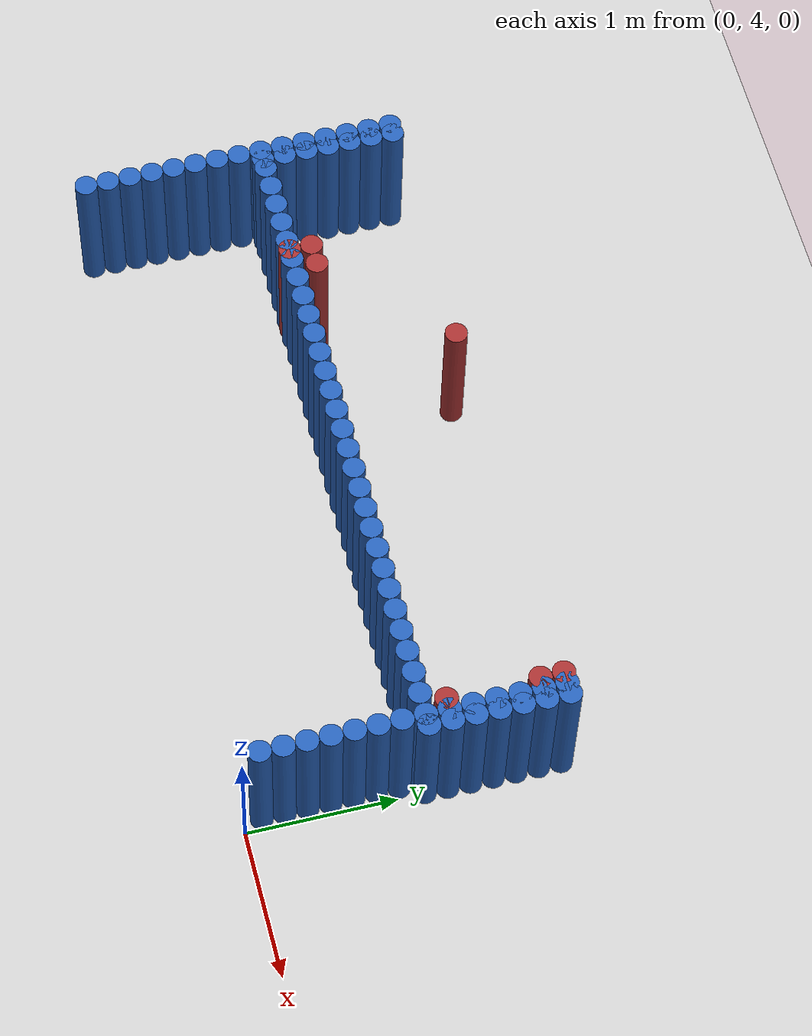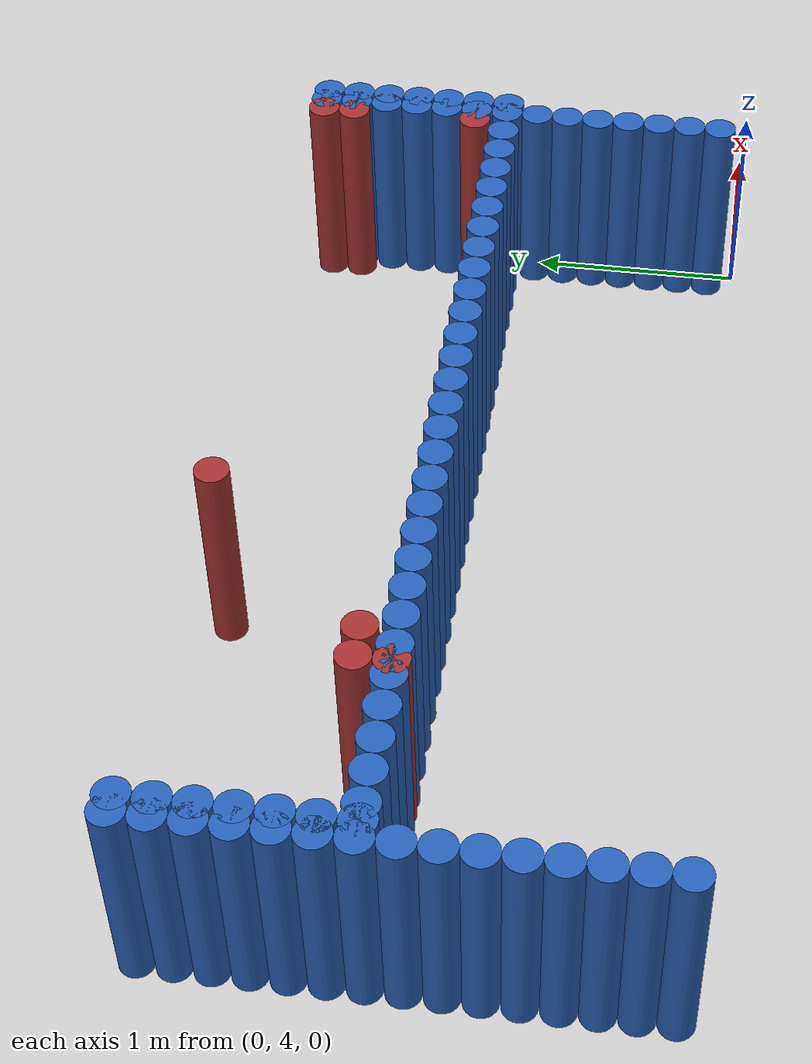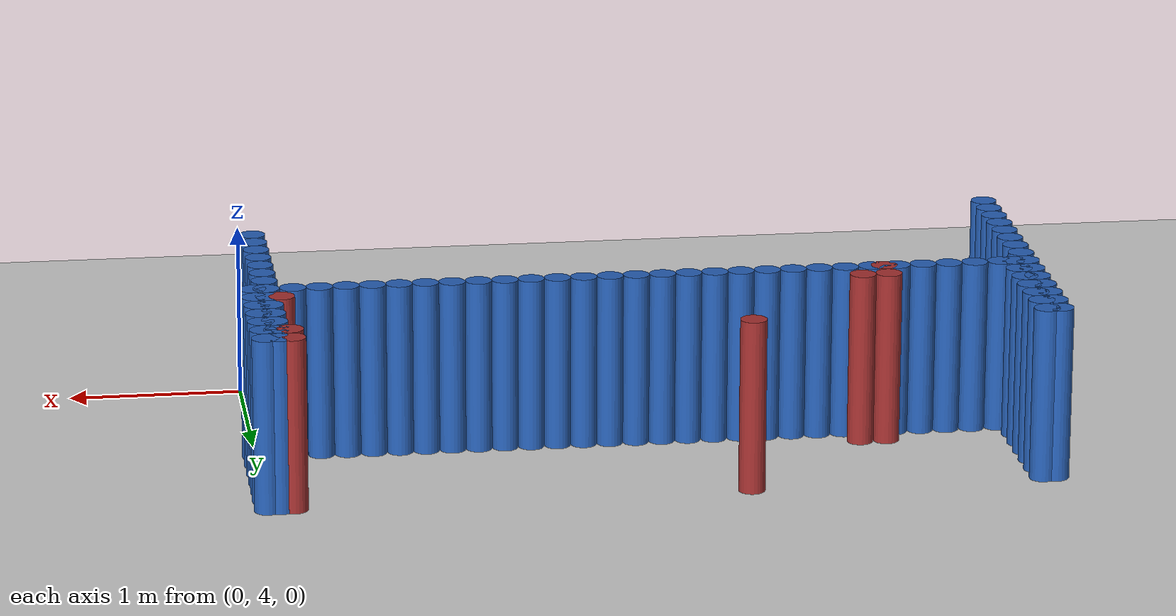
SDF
<sdf version="1.6">
 <world name="barn_world">
  <model name="ground_plane">
   <static>1</static>
   <link name="link">
    <collision name="collision">
     <geometry><plane><normal>0 0 1</normal><size>100 100</size></plane></geometry>
    </collision>
    <visual name="visual">
     <geometry><plane><normal>0 0 1</normal><size>100 100</size></plane></geometry>
     <material>
      <script><uri>file://media/materials/scripts/gazebo.material</uri><name>Gazebo/Grey</name></script>
     </material>
    </visual>
   </link>
  </model>
  <model name="unit_cylinder_81">
   <static>1</static>
   <pose>-4.4250 3.9750 0.5 0 0 0</pose>
   <link name="link">
    <collision name="collision">
     <geometry><cylinder><radius>0.075</radius><length>1</length></cylinder></geometry>
    </collision>
    <visual name="visual">
     <geometry><cylinder><radius>0.075</radius><length>1</length></cylinder></geometry>
     <material><ambient>0.152 0.379 0.72 1</ambient><diffuse>0.152 0.379 0.72 1</diffuse></material>
    </visual>
   </link>
  </model>
  <model name="unit_cylinder_82">
   <static>1</static>
   <pose>-0.0750 4.1250 0.5 0 0 0</pose>
   <link name="link">
    <collision name="collision">
     <geometry><cylinder><radius>0.075</radius><length>1</length></cylinder></geometry>
    </collision>
    <visual name="visual">
     <geometry><cylinder><radius>0.075</radius><length>1</length></cylinder></geometry>
     <material><ambient>0.152 0.379 0.72 1</ambient><diffuse>0.152 0.379 0.72 1</diffuse></material>
    </visual>
   </link>
  </model>
  <model name="unit_cylinder_83">
   <static>1</static>
   <pose>-4.4250 4.1250 0.5 0 0 0</pose>
   <link name="link">
    <collision name="collision">
     <geometry><cylinder><radius>0.075</radius><length>1</length></cylinder></geometry>
    </collision>
    <visual name="visual">
     <geometry><cylinder><radius>0.075</radius><length>1</length></cylinder></geometry>
     <material><ambient>0.152 0.379 0.72 1</ambient><diffuse>0.152 0.379 0.72 1</diffuse></material>
    </visual>
   </link>
  </model>
  <model name="unit_cylinder_84">
   <static>1</static>
   <pose>-0.0750 4.2750 0.5 0 0 0</pose>
   <link name="link">
    <collision name="collision">
     <geometry><cylinder><radius>0.075</radius><length>1</length></cylinder></geometry>
    </collision>
    <visual name="visual">
     <geometry><cylinder><radius>0.075</radius><length>1</length></cylinder></geometry>
     <material><ambient>0.152 0.379 0.72 1</ambient><diffuse>0.152 0.379 0.72 1</diffuse></material>
    </visual>
   </link>
  </model>
  <model name="unit_cylinder_85">
   <static>1</static>
   <pose>-4.4250 4.2750 0.5 0 0 0</pose>
   <link name="link">
    <collision name="collision">
     <geometry><cylinder><radius>0.075</radius><length>1</length></cylinder></geometry>
    </collision>
    <visual name="visual">
     <geometry><cylinder><radius>0.075</radius><length>1</length></cylinder></geometry>
     <material><ambient>0.152 0.379 0.72 1</ambient><diffuse>0.152 0.379 0.72 1</diffuse></material>
    </visual>
   </link>
  </model>
  <model name="unit_cylinder_86">
   <static>1</static>
   <pose>-0.0750 4.4250 0.5 0 0 0</pose>
   <link name="link">
    <collision name="collision">
     <geometry><cylinder><radius>0.075</radius><length>1</length></cylinder></geometry>
    </collision>
    <visual name="visual">
     <geometry><cylinder><radius>0.075</radius><length>1</length></cylinder></geometry>
     <material><ambient>0.152 0.379 0.72 1</ambient><diffuse>0.152 0.379 0.72 1</diffuse></material>
    </visual>
   </link>
  </model>
  <model name="unit_cylinder_87">
   <static>1</static>
   <pose>-4.4250 4.4250 0.5 0 0 0</pose>
   <link name="link">
    <collision name="collision">
     <geometry><cylinder><radius>0.075</radius><length>1</length></cylinder></geometry>
    </collision>
    <visual name="visual">
     <geometry><cylinder><radius>0.075</radius><length>1</length></cylinder></geometry>
     <material><ambient>0.152 0.379 0.72 1</ambient><diffuse>0.152 0.379 0.72 1</diffuse></material>
    </visual>
   </link>
  </model>
  <model name="unit_cylinder_88">
   <static>1</static>
   <pose>-0.0750 4.5750 0.5 0 0 0</pose>
   <link name="link">
    <collision name="collision">
     <geometry><cylinder><radius>0.075</radius><length>1</length></cylinder></geometry>
    </collision>
    <visual name="visual">
     <geometry><cylinder><radius>0.075</radius><length>1</length></cylinder></geometry>
     <material><ambient>0.152 0.379 0.72 1</ambient><diffuse>0.152 0.379 0.72 1</diffuse></material>
    </visual>
   </link>
  </model>
  <model name="unit_cylinder_89">
   <static>1</static>
   <pose>-4.4250 4.5750 0.5 0 0 0</pose>
   <link name="link">
    <collision name="collision">
     <geometry><cylinder><radius>0.075</radius><length>1</length></cylinder></geometry>
    </collision>
    <visual name="visual">
     <geometry><cylinder><radius>0.075</radius><length>1</length></cylinder></geometry>
     <material><ambient>0.152 0.379 0.72 1</ambient><diffuse>0.152 0.379 0.72 1</diffuse></material>
    </visual>
   </link>
  </model>
  <model name="unit_cylinder_90">
   <static>1</static>
   <pose>-0.0750 4.7250 0.5 0 0 0</pose>
   <link name="link">
    <collision name="collision">
     <geometry><cylinder><radius>0.075</radius><length>1</length></cylinder></geometry>
    </collision>
    <visual name="visual">
     <geometry><cylinder><radius>0.075</radius><length>1</length></cylinder></geometry>
     <material><ambient>0.152 0.379 0.72 1</ambient><diffuse>0.152 0.379 0.72 1</diffuse></material>
    </visual>
   </link>
  </model>
  <model name="unit_cylinder_91">
   <static>1</static>
   <pose>-4.4250 4.7250 0.5 0 0 0</pose>
   <link name="link">
    <collision name="collision">
     <geometry><cylinder><radius>0.075</radius><length>1</length></cylinder></geometry>
    </collision>
    <visual name="visual">
     <geometry><cylinder><radius>0.075</radius><length>1</length></cylinder></geometry>
     <material><ambient>0.152 0.379 0.72 1</ambient><diffuse>0.152 0.379 0.72 1</diffuse></material>
    </visual>
   </link>
  </model>
  <model name="unit_cylinder_92">
   <static>1</static>
   <pose>-0.0750 4.8750 0.5 0 0 0</pose>
   <link name="link">
    <collision name="collision">
     <geometry><cylinder><radius>0.075</radius><length>1</length></cylinder></geometry>
    </collision>
    <visual name="visual">
     <geometry><cylinder><radius>0.075</radius><length>1</length></cylinder></geometry>
     <material><ambient>0.152 0.379 0.72 1</ambient><diffuse>0.152 0.379 0.72 1</diffuse></material>
    </visual>
   </link>
  </model>
  <model name="unit_cylinder_93">
   <static>1</static>
   <pose>-4.4250 4.8750 0.5 0 0 0</pose>
   <link name="link">
    <collision name="collision">
     <geometry><cylinder><radius>0.075</radius><length>1</length></cylinder></geometry>
    </collision>
    <visual name="visual">
     <geometry><cylinder><radius>0.075</radius><length>1</length></cylinder></geometry>
     <material><ambient>0.152 0.379 0.72 1</ambient><diffuse>0.152 0.379 0.72 1</diffuse></material>
    </visual>
   </link>
  </model>
  <model name="unit_cylinder_94">
   <static>1</static>
   <pose>-0.0750 5.0250 0.5 0 0 0</pose>
   <link name="link">
    <collision name="collision">
     <geometry><cylinder><radius>0.075</radius><length>1</length></cylinder></geometry>
    </collision>
    <visual name="visual">
     <geometry><cylinder><radius>0.075</radius><length>1</length></cylinder></geometry>
     <material><ambient>0.152 0.379 0.72 1</ambient><diffuse>0.152 0.379 0.72 1</diffuse></material>
    </visual>
   </link>
  </model>
  <model name="unit_cylinder_95">
   <static>1</static>
   <pose>-4.4250 5.0250 0.5 0 0 0</pose>
   <link name="link">
    <collision name="collision">
     <geometry><cylinder><radius>0.075</radius><length>1</length></cylinder></geometry>
    </collision>
    <visual name="visual">
     <geometry><cylinder><radius>0.075</radius><length>1</length></cylinder></geometry>
     <material><ambient>0.152 0.379 0.72 1</ambient><diffuse>0.152 0.379 0.72 1</diffuse></material>
    </visual>
   </link>
  </model>
  <model name="unit_cylinder_96">
   <static>1</static>
   <pose>-0.0750 5.1750 0.5 0 0 0</pose>
   <link name="link">
    <collision name="collision">
     <geometry><cylinder><radius>0.075</radius><length>1</length></cylinder></geometry>
    </collision>
    <visual name="visual">
     <geometry><cylinder><radius>0.075</radius><length>1</length></cylinder></geometry>
     <material><ambient>0.152 0.379 0.72 1</ambient><diffuse>0.152 0.379 0.72 1</diffuse></material>
    </visual>
   </link>
  </model>
  <model name="unit_cylinder_97">
   <static>1</static>
   <pose>-0.2250 5.1750 0.5 0 0 0</pose>
   <link name="link">
    <collision name="collision">
     <geometry><cylinder><radius>0.075</radius><length>1</length></cylinder></geometry>
    </collision>
    <visual name="visual">
     <geometry><cylinder><radius>0.075</radius><length>1</length></cylinder></geometry>
     <material><ambient>0.152 0.379 0.72 1</ambient><diffuse>0.152 0.379 0.72 1</diffuse></material>
    </visual>
   </link>
  </model>
  <model name="unit_cylinder_98">
   <static>1</static>
   <pose>-0.3750 5.1750 0.5 0 0 0</pose>
   <link name="link">
    <collision name="collision">
     <geometry><cylinder><radius>0.075</radius><length>1</length></cylinder></geometry>
    </collision>
    <visual name="visual">
     <geometry><cylinder><radius>0.075</radius><length>1</length></cylinder></geometry>
     <material><ambient>0.152 0.379 0.72 1</ambient><diffuse>0.152 0.379 0.72 1</diffuse></material>
    </visual>
   </link>
  </model>
  <model name="unit_cylinder_99">
   <static>1</static>
   <pose>-0.5250 5.1750 0.5 0 0 0</pose>
   <link name="link">
    <collision name="collision">
     <geometry><cylinder><radius>0.075</radius><length>1</length></cylinder></geometry>
    </collision>
    <visual name="visual">
     <geometry><cylinder><radius>0.075</radius><length>1</length></cylinder></geometry>
     <material><ambient>0.152 0.379 0.72 1</ambient><diffuse>0.152 0.379 0.72 1</diffuse></material>
    </visual>
   </link>
  </model>
  <model name="unit_cylinder_100">
   <static>1</static>
   <pose>-0.6750 5.1750 0.5 0 0 0</pose>
   <link name="link">
    <collision name="collision">
     <geometry><cylinder><radius>0.075</radius><length>1</length></cylinder></geometry>
    </collision>
    <visual name="visual">
     <geometry><cylinder><radius>0.075</radius><length>1</length></cylinder></geometry>
     <material><ambient>0.152 0.379 0.72 1</ambient><diffuse>0.152 0.379 0.72 1</diffuse></material>
    </visual>
   </link>
  </model>
  <model name="unit_cylinder_101">
   <static>1</static>
   <pose>-0.8250 5.1750 0.5 0 0 0</pose>
   <link name="link">
    <collision name="collision">
     <geometry><cylinder><radius>0.075</radius><length>1</length></cylinder></geometry>
    </collision>
    <visual name="visual">
     <geometry><cylinder><radius>0.075</radius><length>1</length></cylinder></geometry>
     <material><ambient>0.152 0.379 0.72 1</ambient><diffuse>0.152 0.379 0.72 1</diffuse></material>
    </visual>
   </link>
  </model>
  <model name="unit_cylinder_102">
   <static>1</static>
   <pose>-0.9750 5.1750 0.5 0 0 0</pose>
   <link name="link">
    <collision name="collision">
     <geometry><cylinder><radius>0.075</radius><length>1</length></cylinder></geometry>
    </collision>
    <visual name="visual">
     <geometry><cylinder><radius>0.075</radius><length>1</length></cylinder></geometry>
     <material><ambient>0.152 0.379 0.72 1</ambient><diffuse>0.152 0.379 0.72 1</diffuse></material>
    </visual>
   </link>
  </model>
  <model name="unit_cylinder_103">
   <static>1</static>
   <pose>-1.1250 5.1750 0.5 0 0 0</pose>
   <link name="link">
    <collision name="collision">
     <geometry><cylinder><radius>0.075</radius><length>1</length></cylinder></geometry>
    </collision>
    <visual name="visual">
     <geometry><cylinder><radius>0.075</radius><length>1</length></cylinder></geometry>
     <material><ambient>0.152 0.379 0.72 1</ambient><diffuse>0.152 0.379 0.72 1</diffuse></material>
    </visual>
   </link>
  </model>
  <model name="unit_cylinder_104">
   <static>1</static>
   <pose>-1.2750 5.1750 0.5 0 0 0</pose>
   <link name="link">
    <collision name="collision">
     <geometry><cylinder><radius>0.075</radius><length>1</length></cylinder></geometry>
    </collision>
    <visual name="visual">
     <geometry><cylinder><radius>0.075</radius><length>1</length></cylinder></geometry>
     <material><ambient>0.152 0.379 0.72 1</ambient><diffuse>0.152 0.379 0.72 1</diffuse></material>
    </visual>
   </link>
  </model>
  <model name="unit_cylinder_105">
   <static>1</static>
   <pose>-1.4250 5.1750 0.5 0 0 0</pose>
   <link name="link">
    <collision name="collision">
     <geometry><cylinder><radius>0.075</radius><length>1</length></cylinder></geometry>
    </collision>
    <visual name="visual">
     <geometry><cylinder><radius>0.075</radius><length>1</length></cylinder></geometry>
     <material><ambient>0.152 0.379 0.72 1</ambient><diffuse>0.152 0.379 0.72 1</diffuse></material>
    </visual>
   </link>
  </model>
  <model name="unit_cylinder_106">
   <static>1</static>
   <pose>-1.5750 5.1750 0.5 0 0 0</pose>
   <link name="link">
    <collision name="collision">
     <geometry><cylinder><radius>0.075</radius><length>1</length></cylinder></geometry>
    </collision>
    <visual name="visual">
     <geometry><cylinder><radius>0.075</radius><length>1</length></cylinder></geometry>
     <material><ambient>0.152 0.379 0.72 1</ambient><diffuse>0.152 0.379 0.72 1</diffuse></material>
    </visual>
   </link>
  </model>
  <model name="unit_cylinder_107">
   <static>1</static>
   <pose>-1.7250 5.1750 0.5 0 0 0</pose>
   <link name="link">
    <collision name="collision">
     <geometry><cylinder><radius>0.075</radius><length>1</length></cylinder></geometry>
    </collision>
    <visual name="visual">
     <geometry><cylinder><radius>0.075</radius><length>1</length></cylinder></geometry>
     <material><ambient>0.152 0.379 0.72 1</ambient><diffuse>0.152 0.379 0.72 1</diffuse></material>
    </visual>
   </link>
  </model>
  <model name="unit_cylinder_108">
   <static>1</static>
   <pose>-1.8750 5.1750 0.5 0 0 0</pose>
   <link name="link">
    <collision name="collision">
     <geometry><cylinder><radius>0.075</radius><length>1</length></cylinder></geometry>
    </collision>
    <visual name="visual">
     <geometry><cylinder><radius>0.075</radius><length>1</length></cylinder></geometry>
     <material><ambient>0.152 0.379 0.72 1</ambient><diffuse>0.152 0.379 0.72 1</diffuse></material>
    </visual>
   </link>
  </model>
  <model name="unit_cylinder_109">
   <static>1</static>
   <pose>-2.0250 5.1750 0.5 0 0 0</pose>
   <link name="link">
    <collision name="collision">
     <geometry><cylinder><radius>0.075</radius><length>1</length></cylinder></geometry>
    </collision>
    <visual name="visual">
     <geometry><cylinder><radius>0.075</radius><length>1</length></cylinder></geometry>
     <material><ambient>0.152 0.379 0.72 1</ambient><diffuse>0.152 0.379 0.72 1</diffuse></material>
    </visual>
   </link>
  </model>
  <model name="unit_cylinder_110">
   <static>1</static>
   <pose>-2.1750 5.1750 0.5 0 0 0</pose>
   <link name="link">
    <collision name="collision">
     <geometry><cylinder><radius>0.075</radius><length>1</length></cylinder></geometry>
    </collision>
    <visual name="visual">
     <geometry><cylinder><radius>0.075</radius><length>1</length></cylinder></geometry>
     <material><ambient>0.152 0.379 0.72 1</ambient><diffuse>0.152 0.379 0.72 1</diffuse></material>
    </visual>
   </link>
  </model>
  <model name="unit_cylinder_111">
   <static>1</static>
   <pose>-2.3250 5.1750 0.5 0 0 0</pose>
   <link name="link">
    <collision name="collision">
     <geometry><cylinder><radius>0.075</radius><length>1</length></cylinder></geometry>
    </collision>
    <visual name="visual">
     <geometry><cylinder><radius>0.075</radius><length>1</length></cylinder></geometry>
     <material><ambient>0.152 0.379 0.72 1</ambient><diffuse>0.152 0.379 0.72 1</diffuse></material>
    </visual>
   </link>
  </model>
  <model name="unit_cylinder_112">
   <static>1</static>
   <pose>-2.4750 5.1750 0.5 0 0 0</pose>
   <link name="link">
    <collision name="collision">
     <geometry><cylinder><radius>0.075</radius><length>1</length></cylinder></geometry>
    </collision>
    <visual name="visual">
     <geometry><cylinder><radius>0.075</radius><length>1</length></cylinder></geometry>
     <material><ambient>0.152 0.379 0.72 1</ambient><diffuse>0.152 0.379 0.72 1</diffuse></material>
    </visual>
   </link>
  </model>
  <model name="unit_cylinder_113">
   <static>1</static>
   <pose>-2.6250 5.1750 0.5 0 0 0</pose>
   <link name="link">
    <collision name="collision">
     <geometry><cylinder><radius>0.075</radius><length>1</length></cylinder></geometry>
    </collision>
    <visual name="visual">
     <geometry><cylinder><radius>0.075</radius><length>1</length></cylinder></geometry>
     <material><ambient>0.152 0.379 0.72 1</ambient><diffuse>0.152 0.379 0.72 1</diffuse></material>
    </visual>
   </link>
  </model>
  <model name="unit_cylinder_114">
   <static>1</static>
   <pose>-2.7750 5.1750 0.5 0 0 0</pose>
   <link name="link">
    <collision name="collision">
     <geometry><cylinder><radius>0.075</radius><length>1</length></cylinder></geometry>
    </collision>
    <visual name="visual">
     <geometry><cylinder><radius>0.075</radius><length>1</length></cylinder></geometry>
     <material><ambient>0.152 0.379 0.72 1</ambient><diffuse>0.152 0.379 0.72 1</diffuse></material>
    </visual>
   </link>
  </model>
  <model name="unit_cylinder_115">
   <static>1</static>
   <pose>-2.9250 5.1750 0.5 0 0 0</pose>
   <link name="link">
    <collision name="collision">
     <geometry><cylinder><radius>0.075</radius><length>1</length></cylinder></geometry>
    </collision>
    <visual name="visual">
     <geometry><cylinder><radius>0.075</radius><length>1</length></cylinder></geometry>
     <material><ambient>0.152 0.379 0.72 1</ambient><diffuse>0.152 0.379 0.72 1</diffuse></material>
    </visual>
   </link>
  </model>
  <model name="unit_cylinder_116">
   <static>1</static>
   <pose>-3.0750 5.1750 0.5 0 0 0</pose>
   <link name="link">
    <collision name="collision">
     <geometry><cylinder><radius>0.075</radius><length>1</length></cylinder></geometry>
    </collision>
    <visual name="visual">
     <geometry><cylinder><radius>0.075</radius><length>1</length></cylinder></geometry>
     <material><ambient>0.152 0.379 0.72 1</ambient><diffuse>0.152 0.379 0.72 1</diffuse></material>
    </visual>
   </link>
  </model>
  <model name="unit_cylinder_117">
   <static>1</static>
   <pose>-3.2250 5.1750 0.5 0 0 0</pose>
   <link name="link">
    <collision name="collision">
     <geometry><cylinder><radius>0.075</radius><length>1</length></cylinder></geometry>
    </collision>
    <visual name="visual">
     <geometry><cylinder><radius>0.075</radius><length>1</length></cylinder></geometry>
     <material><ambient>0.152 0.379 0.72 1</ambient><diffuse>0.152 0.379 0.72 1</diffuse></material>
    </visual>
   </link>
  </model>
  <model name="unit_cylinder_118">
   <static>1</static>
   <pose>-3.3750 5.1750 0.5 0 0 0</pose>
   <link name="link">
    <collision name="collision">
     <geometry><cylinder><radius>0.075</radius><length>1</length></cylinder></geometry>
    </collision>
    <visual name="visual">
     <geometry><cylinder><radius>0.075</radius><length>1</length></cylinder></geometry>
     <material><ambient>0.152 0.379 0.72 1</ambient><diffuse>0.152 0.379 0.72 1</diffuse></material>
    </visual>
   </link>
  </model>
  <model name="unit_cylinder_119">
   <static>1</static>
   <pose>-3.5250 5.1750 0.5 0 0 0</pose>
   <link name="link">
    <collision name="collision">
     <geometry><cylinder><radius>0.075</radius><length>1</length></cylinder></geometry>
    </collision>
    <visual name="visual">
     <geometry><cylinder><radius>0.075</radius><length>1</length></cylinder></geometry>
     <material><ambient>0.152 0.379 0.72 1</ambient><diffuse>0.152 0.379 0.72 1</diffuse></material>
    </visual>
   </link>
  </model>
  <model name="unit_cylinder_120">
   <static>1</static>
   <pose>-3.6750 5.1750 0.5 0 0 0</pose>
   <link name="link">
    <collision name="collision">
     <geometry><cylinder><radius>0.075</radius><length>1</length></cylinder></geometry>
    </collision>
    <visual name="visual">
     <geometry><cylinder><radius>0.075</radius><length>1</length></cylinder></geometry>
     <material><ambient>0.152 0.379 0.72 1</ambient><diffuse>0.152 0.379 0.72 1</diffuse></material>
    </visual>
   </link>
  </model>
  <model name="unit_cylinder_121">
   <static>1</static>
   <pose>-3.8250 5.1750 0.5 0 0 0</pose>
   <link name="link">
    <collision name="collision">
     <geometry><cylinder><radius>0.075</radius><length>1</length></cylinder></geometry>
    </collision>
    <visual name="visual">
     <geometry><cylinder><radius>0.075</radius><length>1</length></cylinder></geometry>
     <material><ambient>0.152 0.379 0.72 1</ambient><diffuse>0.152 0.379 0.72 1</diffuse></material>
    </visual>
   </link>
  </model>
  <model name="unit_cylinder_122">
   <static>1</static>
   <pose>-3.9750 5.1750 0.5 0 0 0</pose>
   <link name="link">
    <collision name="collision">
     <geometry><cylinder><radius>0.075</radius><length>1</length></cylinder></geometry>
    </collision>
    <visual name="visual">
     <geometry><cylinder><radius>0.075</radius><length>1</length></cylinder></geometry>
     <material><ambient>0.152 0.379 0.72 1</ambient><diffuse>0.152 0.379 0.72 1</diffuse></material>
    </visual>
   </link>
  </model>
  <model name="unit_cylinder_123">
   <static>1</static>
   <pose>-4.1250 5.1750 0.5 0 0 0</pose>
   <link name="link">
    <collision name="collision">
     <geometry><cylinder><radius>0.075</radius><length>1</length></cylinder></geometry>
    </collision>
    <visual name="visual">
     <geometry><cylinder><radius>0.075</radius><length>1</length></cylinder></geometry>
     <material><ambient>0.152 0.379 0.72 1</ambient><diffuse>0.152 0.379 0.72 1</diffuse></material>
    </visual>
   </link>
  </model>
  <model name="unit_cylinder_124">
   <static>1</static>
   <pose>-4.2750 5.1750 0.5 0 0 0</pose>
   <link name="link">
    <collision name="collision">
     <geometry><cylinder><radius>0.075</radius><length>1</length></cylinder></geometry>
    </collision>
    <visual name="visual">
     <geometry><cylinder><radius>0.075</radius><length>1</length></cylinder></geometry>
     <material><ambient>0.152 0.379 0.72 1</ambient><diffuse>0.152 0.379 0.72 1</diffuse></material>
    </visual>
   </link>
  </model>
  <model name="unit_cylinder_125">
   <static>1</static>
   <pose>-4.4250 5.1750 0.5 0 0 0</pose>
   <link name="link">
    <collision name="collision">
     <geometry><cylinder><radius>0.075</radius><length>1</length></cylinder></geometry>
    </collision>
    <visual name="visual">
     <geometry><cylinder><radius>0.075</radius><length>1</length></cylinder></geometry>
     <material><ambient>0.152 0.379 0.72 1</ambient><diffuse>0.152 0.379 0.72 1</diffuse></material>
    </visual>
   </link>
  </model>
  <model name="unit_cylinder_126">
   <static>1</static>
   <pose>-4.3500 5.1750 0.5 0 0 0</pose>
   <link name="link">
    <collision name="collision">
     <geometry><cylinder><radius>0.075</radius><length>1</length></cylinder></geometry>
    </collision>
    <visual name="visual">
     <geometry><cylinder><radius>0.075</radius><length>1</length></cylinder></geometry>
     <material><ambient>0.152 0.379 0.72 1</ambient><diffuse>0.152 0.379 0.72 1</diffuse></material>
    </visual>
   </link>
  </model>
  <model name="unit_cylinder_127">
   <static>1</static>
   <pose>-4.3500 5.3250 0.5 0 0 0</pose>
   <link name="link">
    <collision name="collision">
     <geometry><cylinder><radius>0.075</radius><length>1</length></cylinder></geometry>
    </collision>
    <visual name="visual">
     <geometry><cylinder><radius>0.075</radius><length>1</length></cylinder></geometry>
     <material><ambient>0.152 0.379 0.72 1</ambient><diffuse>0.152 0.379 0.72 1</diffuse></material>
    </visual>
   </link>
  </model>
  <model name="unit_cylinder_128">
   <static>1</static>
   <pose>-4.3500 5.4750 0.5 0 0 0</pose>
   <link name="link">
    <collision name="collision">
     <geometry><cylinder><radius>0.075</radius><length>1</length></cylinder></geometry>
    </collision>
    <visual name="visual">
     <geometry><cylinder><radius>0.075</radius><length>1</length></cylinder></geometry>
     <material><ambient>0.152 0.379 0.72 1</ambient><diffuse>0.152 0.379 0.72 1</diffuse></material>
    </visual>
   </link>
  </model>
  <model name="unit_cylinder_129">
   <static>1</static>
   <pose>-4.3500 5.6250 0.5 0 0 0</pose>
   <link name="link">
    <collision name="collision">
     <geometry><cylinder><radius>0.075</radius><length>1</length></cylinder></geometry>
    </collision>
    <visual name="visual">
     <geometry><cylinder><radius>0.075</radius><length>1</length></cylinder></geometry>
     <material><ambient>0.152 0.379 0.72 1</ambient><diffuse>0.152 0.379 0.72 1</diffuse></material>
    </visual>
   </link>
  </model>
  <model name="unit_cylinder_130">
   <static>1</static>
   <pose>-4.3500 5.7750 0.5 0 0 0</pose>
   <link name="link">
    <collision name="collision">
     <geometry><cylinder><radius>0.075</radius><length>1</length></cylinder></geometry>
    </collision>
    <visual name="visual">
     <geometry><cylinder><radius>0.075</radius><length>1</length></cylinder></geometry>
     <material><ambient>0.152 0.379 0.72 1</ambient><diffuse>0.152 0.379 0.72 1</diffuse></material>
    </visual>
   </link>
  </model>
  <model name="unit_cylinder_131">
   <static>1</static>
   <pose>-4.3500 5.9250 0.5 0 0 0</pose>
   <link name="link">
    <collision name="collision">
     <geometry><cylinder><radius>0.075</radius><length>1</length></cylinder></geometry>
    </collision>
    <visual name="visual">
     <geometry><cylinder><radius>0.075</radius><length>1</length></cylinder></geometry>
     <material><ambient>0.152 0.379 0.72 1</ambient><diffuse>0.152 0.379 0.72 1</diffuse></material>
    </visual>
   </link>
  </model>
  <model name="unit_cylinder_132">
   <static>1</static>
   <pose>-4.3500 6.0750 0.5 0 0 0</pose>
   <link name="link">
    <collision name="collision">
     <geometry><cylinder><radius>0.075</radius><length>1</length></cylinder></geometry>
    </collision>
    <visual name="visual">
     <geometry><cylinder><radius>0.075</radius><length>1</length></cylinder></geometry>
     <material><ambient>0.152 0.379 0.72 1</ambient><diffuse>0.152 0.379 0.72 1</diffuse></material>
    </visual>
   </link>
  </model>
  <model name="unit_cylinder_168">
   <static>1</static>
   <pose>-3.6000 5.1750 0.5 0 0 0</pose>
   <link name="link">
    <collision name="collision">
     <geometry><cylinder><radius>0.075</radius><length>1</length></cylinder></geometry>
    </collision>
    <visual name="visual">
     <geometry><cylinder><radius>0.075</radius><length>1</length></cylinder></geometry>
     <material><ambient>0.648 0.192 0.192 1</ambient><diffuse>0.648 0.192 0.192 1</diffuse></material>
    </visual>
   </link>
  </model>
  <model name="unit_cylinder_169">
   <static>1</static>
   <pose>-3.6000 5.3250 0.5 0 0 0</pose>
   <link name="link">
    <collision name="collision">
     <geometry><cylinder><radius>0.075</radius><length>1</length></cylinder></geometry>
    </collision>
    <visual name="visual">
     <geometry><cylinder><radius>0.075</radius><length>1</length></cylinder></geometry>
     <material><ambient>0.648 0.192 0.192 1</ambient><diffuse>0.648 0.192 0.192 1</diffuse></material>
    </visual>
   </link>
  </model>
  <model name="unit_cylinder_170">
   <static>1</static>
   <pose>-3.4500 5.3250 0.5 0 0 0</pose>
   <link name="link">
    <collision name="collision">
     <geometry><cylinder><radius>0.075</radius><length>1</length></cylinder></geometry>
    </collision>
    <visual name="visual">
     <geometry><cylinder><radius>0.075</radius><length>1</length></cylinder></geometry>
     <material><ambient>0.648 0.192 0.192 1</ambient><diffuse>0.648 0.192 0.192 1</diffuse></material>
    </visual>
   </link>
  </model>
  <model name="unit_cylinder_175">
   <static>1</static>
   <pose>-2.7000 6.0750 0.5 0 0 0</pose>
   <link name="link">
    <collision name="collision">
     <geometry><cylinder><radius>0.075</radius><length>1</length></cylinder></geometry>
    </collision>
    <visual name="visual">
     <geometry><cylinder><radius>0.075</radius><length>1</length></cylinder></geometry>
     <material><ambient>0.648 0.192 0.192 1</ambient><diffuse>0.648 0.192 0.192 1</diffuse></material>
    </visual>
   </link>
  </model>
  <model name="unit_cylinder_194">
   <static>1</static>
   <pose>-0.1500 5.3250 0.5 0 0 0</pose>
   <link name="link">
    <collision name="collision">
     <geometry><cylinder><radius>0.075</radius><length>1</length></cylinder></geometry>
    </collision>
    <visual name="visual">
     <geometry><cylinder><radius>0.075</radius><length>1</length></cylinder></geometry>
     <material><ambient>0.648 0.192 0.192 1</ambient><diffuse>0.648 0.192 0.192 1</diffuse></material>
    </visual>
   </link>
  </model>
  <model name="unit_cylinder_195">
   <static>1</static>
   <pose>-0.1500 5.9250 0.5 0 0 0</pose>
   <link name="link">
    <collision name="collision">
     <geometry><cylinder><radius>0.075</radius><length>1</length></cylinder></geometry>
    </collision>
    <visual name="visual">
     <geometry><cylinder><radius>0.075</radius><length>1</length></cylinder></geometry>
     <material><ambient>0.648 0.192 0.192 1</ambient><diffuse>0.648 0.192 0.192 1</diffuse></material>
    </visual>
   </link>
  </model>
  <model name="unit_cylinder_196">
   <static>1</static>
   <pose>-0.1500 6.0750 0.5 0 0 0</pose>
   <link name="link">
    <collision name="collision">
     <geometry><cylinder><radius>0.075</radius><length>1</length></cylinder></geometry>
    </collision>
    <visual name="visual">
     <geometry><cylinder><radius>0.075</radius><length>1</length></cylinder></geometry>
     <material><ambient>0.648 0.192 0.192 1</ambient><diffuse>0.648 0.192 0.192 1</diffuse></material>
    </visual>
   </link>
  </model>
  <model name="unit_cylinder_204">
   <static>1</static>
   <pose>0.0000 5.1750 0.5 0 0 0</pose>
   <link name="link">
    <collision name="collision">
     <geometry><cylinder><radius>0.075</radius><length>1</length></cylinder></geometry>
    </collision>
    <visual name="visual">
     <geometry><cylinder><radius>0.075</radius><length>1</length></cylinder></geometry>
     <material><ambient>0.152 0.379 0.72 1</ambient><diffuse>0.152 0.379 0.72 1</diffuse></material>
    </visual>
   </link>
  </model>
  <model name="unit_cylinder_205">
   <static>1</static>
   <pose>0.0000 5.3250 0.5 0 0 0</pose>
   <link name="link">
    <collision name="collision">
     <geometry><cylinder><radius>0.075</radius><length>1</length></cylinder></geometry>
    </collision>
    <visual name="visual">
     <geometry><cylinder><radius>0.075</radius><length>1</length></cylinder></geometry>
     <material><ambient>0.152 0.379 0.72 1</ambient><diffuse>0.152 0.379 0.72 1</diffuse></material>
    </visual>
   </link>
  </model>
  <model name="unit_cylinder_206">
   <static>1</static>
   <pose>0.0000 5.4750 0.5 0 0 0</pose>
   <link name="link">
    <collision name="collision">
     <geometry><cylinder><radius>0.075</radius><length>1</length></cylinder></geometry>
    </collision>
    <visual name="visual">
     <geometry><cylinder><radius>0.075</radius><length>1</length></cylinder></geometry>
     <material><ambient>0.152 0.379 0.72 1</ambient><diffuse>0.152 0.379 0.72 1</diffuse></material>
    </visual>
   </link>
  </model>
  <model name="unit_cylinder_207">
   <static>1</static>
   <pose>0.0000 5.6250 0.5 0 0 0</pose>
   <link name="link">
    <collision name="collision">
     <geometry><cylinder><radius>0.075</radius><length>1</length></cylinder></geometry>
    </collision>
    <visual name="visual">
     <geometry><cylinder><radius>0.075</radius><length>1</length></cylinder></geometry>
     <material><ambient>0.152 0.379 0.72 1</ambient><diffuse>0.152 0.379 0.72 1</diffuse></material>
    </visual>
   </link>
  </model>
  <model name="unit_cylinder_208">
   <static>1</static>
   <pose>0.0000 5.7750 0.5 0 0 0</pose>
   <link name="link">
    <collision name="collision">
     <geometry><cylinder><radius>0.075</radius><length>1</length></cylinder></geometry>
    </collision>
    <visual name="visual">
     <geometry><cylinder><radius>0.075</radius><length>1</length></cylinder></geometry>
     <material><ambient>0.152 0.379 0.72 1</ambient><diffuse>0.152 0.379 0.72 1</diffuse></material>
    </visual>
   </link>
  </model>
  <model name="unit_cylinder_209">
   <static>1</static>
   <pose>0.0000 5.9250 0.5 0 0 0</pose>
   <link name="link">
    <collision name="collision">
     <geometry><cylinder><radius>0.075</radius><length>1</length></cylinder></geometry>
    </collision>
    <visual name="visual">
     <geometry><cylinder><radius>0.075</radius><length>1</length></cylinder></geometry>
     <material><ambient>0.152 0.379 0.72 1</ambient><diffuse>0.152 0.379 0.72 1</diffuse></material>
    </visual>
   </link>
  </model>
  <model name="unit_cylinder_210">
   <static>1</static>
   <pose>0.0000 6.0750 0.5 0 0 0</pose>
   <link name="link">
    <collision name="collision">
     <geometry><cylinder><radius>0.075</radius><length>1</length></cylinder></geometry>
    </collision>
    <visual name="visual">
     <geometry><cylinder><radius>0.075</radius><length>1</length></cylinder></geometry>
     <material><ambient>0.152 0.379 0.72 1</ambient><diffuse>0.152 0.379 0.72 1</diffuse></material>
    </visual>
   </link>
  </model>
  <model name="unit_cylinder_264">
   <static>1</static>
   <pose>-0.0750 5.1750 0.5 0 0 0</pose>
   <link name="link">
    <collision name="collision">
     <geometry><cylinder><radius>0.075</radius><length>1</length></cylinder></geometry>
    </collision>
    <visual name="visual">
     <geometry><cylinder><radius>0.075</radius><length>1</length></cylinder></geometry>
     <material><ambient>0.152 0.379 0.72 1</ambient><diffuse>0.152 0.379 0.72 1</diffuse></material>
    </visual>
   </link>
  </model>
  <model name="unit_cylinder_265">
   <static>1</static>
   <pose>-4.4250 5.1750 0.5 0 0 0</pose>
   <link name="link">
    <collision name="collision">
     <geometry><cylinder><radius>0.075</radius><length>1</length></cylinder></geometry>
    </collision>
    <visual name="visual">
     <geometry><cylinder><radius>0.075</radius><length>1</length></cylinder></geometry>
     <material><ambient>0.152 0.379 0.72 1</ambient><diffuse>0.152 0.379 0.72 1</diffuse></material>
    </visual>
   </link>
  </model>
  <model name="unit_cylinder_266">
   <static>1</static>
   <pose>-0.0750 5.3250 0.5 0 0 0</pose>
   <link name="link">
    <collision name="collision">
     <geometry><cylinder><radius>0.075</radius><length>1</length></cylinder></geometry>
    </collision>
    <visual name="visual">
     <geometry><cylinder><radius>0.075</radius><length>1</length></cylinder></geometry>
     <material><ambient>0.152 0.379 0.72 1</ambient><diffuse>0.152 0.379 0.72 1</diffuse></material>
    </visual>
   </link>
  </model>
  <model name="unit_cylinder_267">
   <static>1</static>
   <pose>-4.4250 5.3250 0.5 0 0 0</pose>
   <link name="link">
    <collision name="collision">
     <geometry><cylinder><radius>0.075</radius><length>1</length></cylinder></geometry>
    </collision>
    <visual name="visual">
     <geometry><cylinder><radius>0.075</radius><length>1</length></cylinder></geometry>
     <material><ambient>0.152 0.379 0.72 1</ambient><diffuse>0.152 0.379 0.72 1</diffuse></material>
    </visual>
   </link>
  </model>
  <model name="unit_cylinder_268">
   <static>1</static>
   <pose>-0.0750 5.4750 0.5 0 0 0</pose>
   <link name="link">
    <collision name="collision">
     <geometry><cylinder><radius>0.075</radius><length>1</length></cylinder></geometry>
    </collision>
    <visual name="visual">
     <geometry><cylinder><radius>0.075</radius><length>1</length></cylinder></geometry>
     <material><ambient>0.152 0.379 0.72 1</ambient><diffuse>0.152 0.379 0.72 1</diffuse></material>
    </visual>
   </link>
  </model>
  <model name="unit_cylinder_269">
   <static>1</static>
   <pose>-4.4250 5.4750 0.5 0 0 0</pose>
   <link name="link">
    <collision name="collision">
     <geometry><cylinder><radius>0.075</radius><length>1</length></cylinder></geometry>
    </collision>
    <visual name="visual">
     <geometry><cylinder><radius>0.075</radius><length>1</length></cylinder></geometry>
     <material><ambient>0.152 0.379 0.72 1</ambient><diffuse>0.152 0.379 0.72 1</diffuse></material>
    </visual>
   </link>
  </model>
  <model name="unit_cylinder_270">
   <static>1</static>
   <pose>-0.0750 5.6250 0.5 0 0 0</pose>
   <link name="link">
    <collision name="collision">
     <geometry><cylinder><radius>0.075</radius><length>1</length></cylinder></geometry>
    </collision>
    <visual name="visual">
     <geometry><cylinder><radius>0.075</radius><length>1</length></cylinder></geometry>
     <material><ambient>0.152 0.379 0.72 1</ambient><diffuse>0.152 0.379 0.72 1</diffuse></material>
    </visual>
   </link>
  </model>
  <model name="unit_cylinder_271">
   <static>1</static>
   <pose>-4.4250 5.6250 0.5 0 0 0</pose>
   <link name="link">
    <collision name="collision">
     <geometry><cylinder><radius>0.075</radius><length>1</length></cylinder></geometry>
    </collision>
    <visual name="visual">
     <geometry><cylinder><radius>0.075</radius><length>1</length></cylinder></geometry>
     <material><ambient>0.152 0.379 0.72 1</ambient><diffuse>0.152 0.379 0.72 1</diffuse></material>
    </visual>
   </link>
  </model>
  <model name="unit_cylinder_272">
   <static>1</static>
   <pose>-0.0750 5.7750 0.5 0 0 0</pose>
   <link name="link">
    <collision name="collision">
     <geometry><cylinder><radius>0.075</radius><length>1</length></cylinder></geometry>
    </collision>
    <visual name="visual">
     <geometry><cylinder><radius>0.075</radius><length>1</length></cylinder></geometry>
     <material><ambient>0.152 0.379 0.72 1</ambient><diffuse>0.152 0.379 0.72 1</diffuse></material>
    </visual>
   </link>
  </model>
  <model name="unit_cylinder_273">
   <static>1</static>
   <pose>-4.4250 5.7750 0.5 0 0 0</pose>
   <link name="link">
    <collision name="collision">
     <geometry><cylinder><radius>0.075</radius><length>1</length></cylinder></geometry>
    </collision>
    <visual name="visual">
     <geometry><cylinder><radius>0.075</radius><length>1</length></cylinder></geometry>
     <material><ambient>0.152 0.379 0.72 1</ambient><diffuse>0.152 0.379 0.72 1</diffuse></material>
    </visual>
   </link>
  </model>
  <model name="unit_cylinder_274">
   <static>1</static>
   <pose>-0.0750 5.9250 0.5 0 0 0</pose>
   <link name="link">
    <collision name="collision">
     <geometry><cylinder><radius>0.075</radius><length>1</length></cylinder></geometry>
    </collision>
    <visual name="visual">
     <geometry><cylinder><radius>0.075</radius><length>1</length></cylinder></geometry>
     <material><ambient>0.152 0.379 0.72 1</ambient><diffuse>0.152 0.379 0.72 1</diffuse></material>
    </visual>
   </link>
  </model>
  <model name="unit_cylinder_275">
   <static>1</static>
   <pose>-4.4250 5.9250 0.5 0 0 0</pose>
   <link name="link">
    <collision name="collision">
     <geometry><cylinder><radius>0.075</radius><length>1</length></cylinder></geometry>
    </collision>
    <visual name="visual">
     <geometry><cylinder><radius>0.075</radius><length>1</length></cylinder></geometry>
     <material><ambient>0.152 0.379 0.72 1</ambient><diffuse>0.152 0.379 0.72 1</diffuse></material>
    </visual>
   </link>
  </model>
  <model name="unit_cylinder_276">
   <static>1</static>
   <pose>-0.0750 6.0750 0.5 0 0 0</pose>
   <link name="link">
    <collision name="collision">
     <geometry><cylinder><radius>0.075</radius><length>1</length></cylinder></geometry>
    </collision>
    <visual name="visual">
     <geometry><cylinder><radius>0.075</radius><length>1</length></cylinder></geometry>
     <material><ambient>0.152 0.379 0.72 1</ambient><diffuse>0.152 0.379 0.72 1</diffuse></material>
    </visual>
   </link>
  </model>
  <model name="unit_cylinder_277">
   <static>1</static>
   <pose>-4.4250 6.0750 0.5 0 0 0</pose>
   <link name="link">
    <collision name="collision">
     <geometry><cylinder><radius>0.075</radius><length>1</length></cylinder></geometry>
    </collision>
    <visual name="visual">
     <geometry><cylinder><radius>0.075</radius><length>1</length></cylinder></geometry>
     <material><ambient>0.152 0.379 0.72 1</ambient><diffuse>0.152 0.379 0.72 1</diffuse></material>
    </visual>
   </link>
  </model>
 </world>
</sdf>
